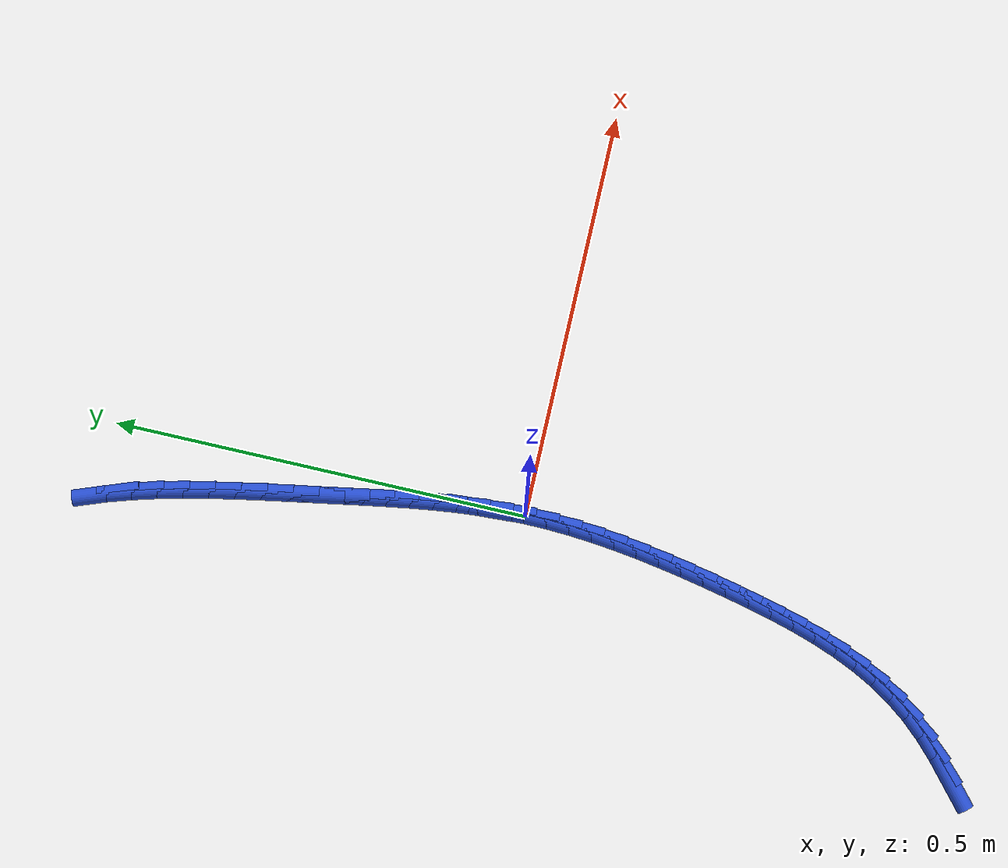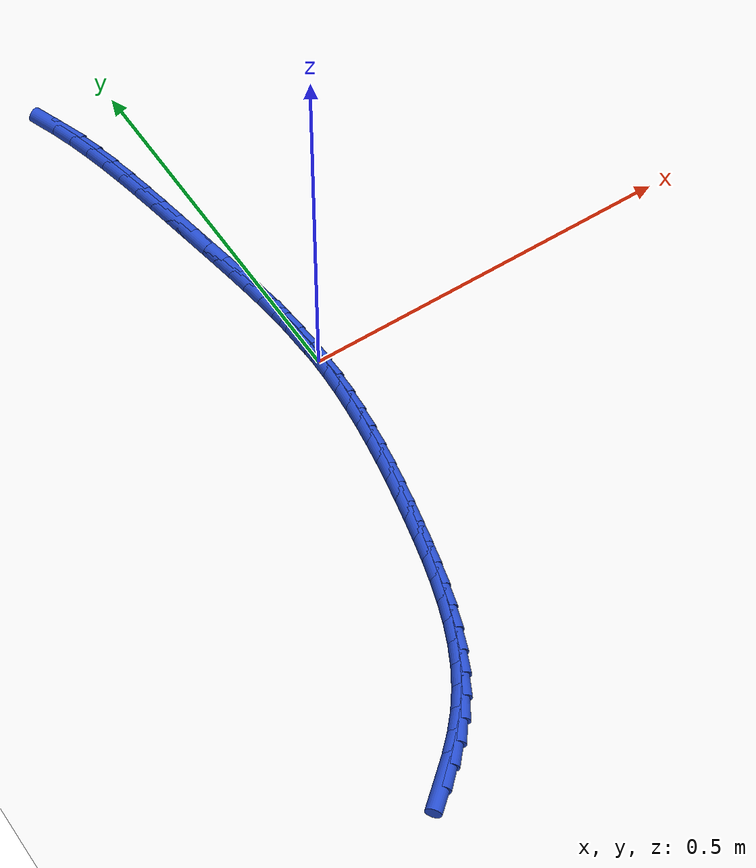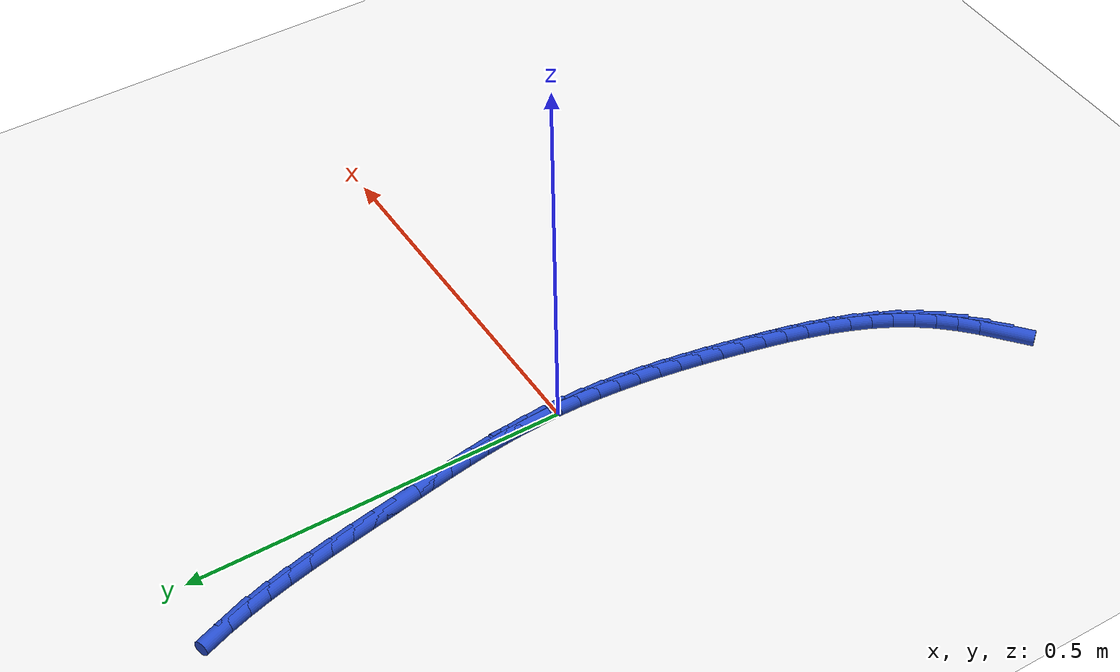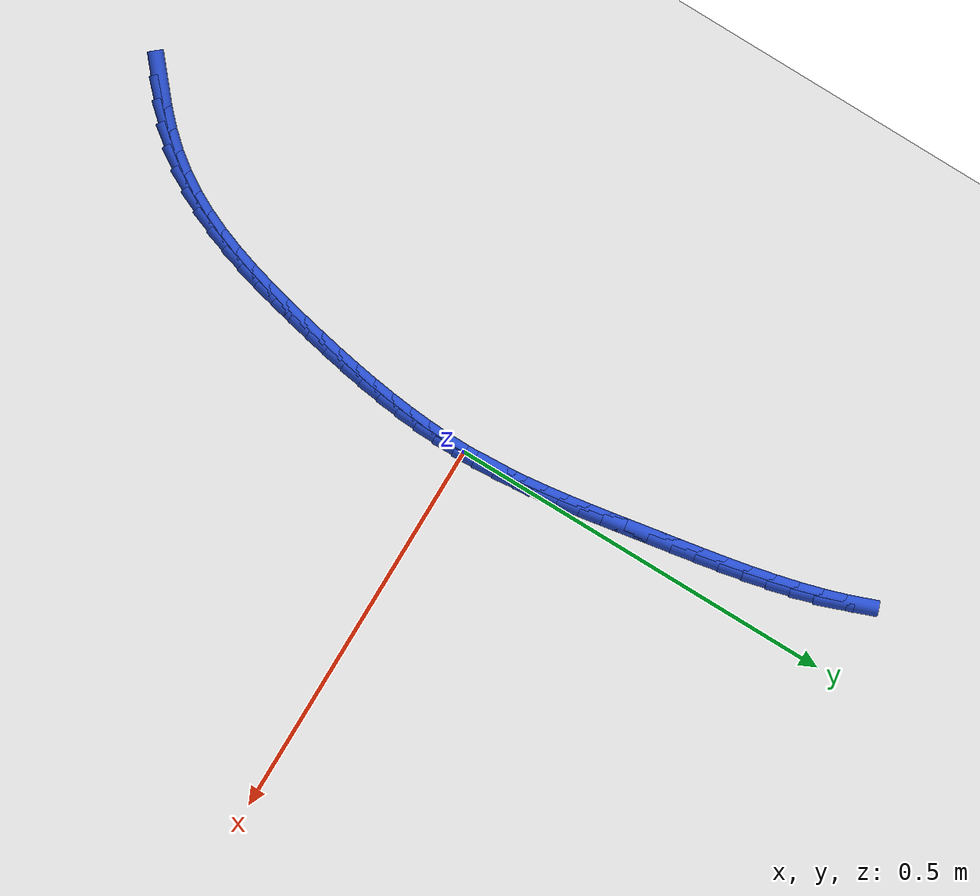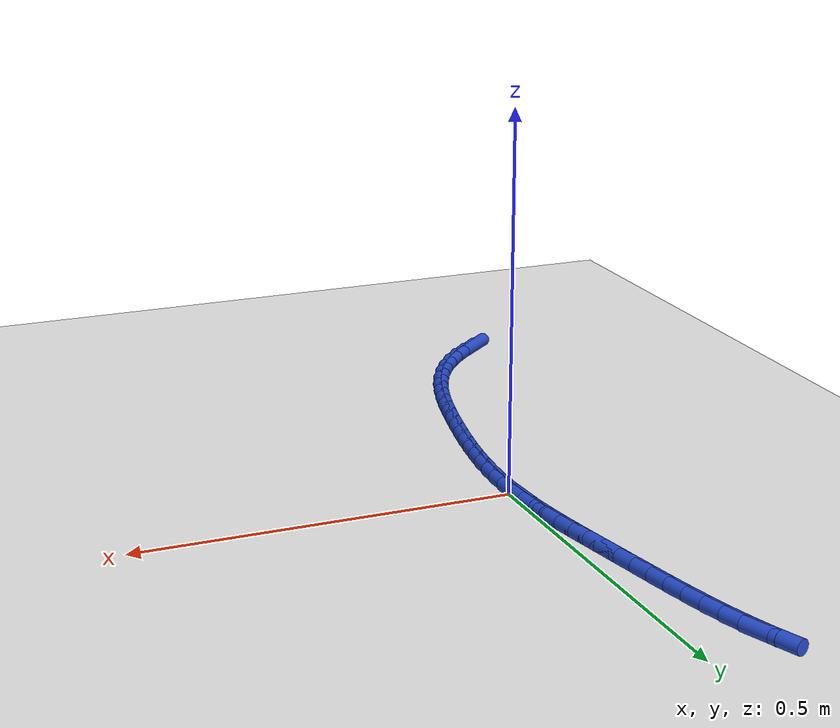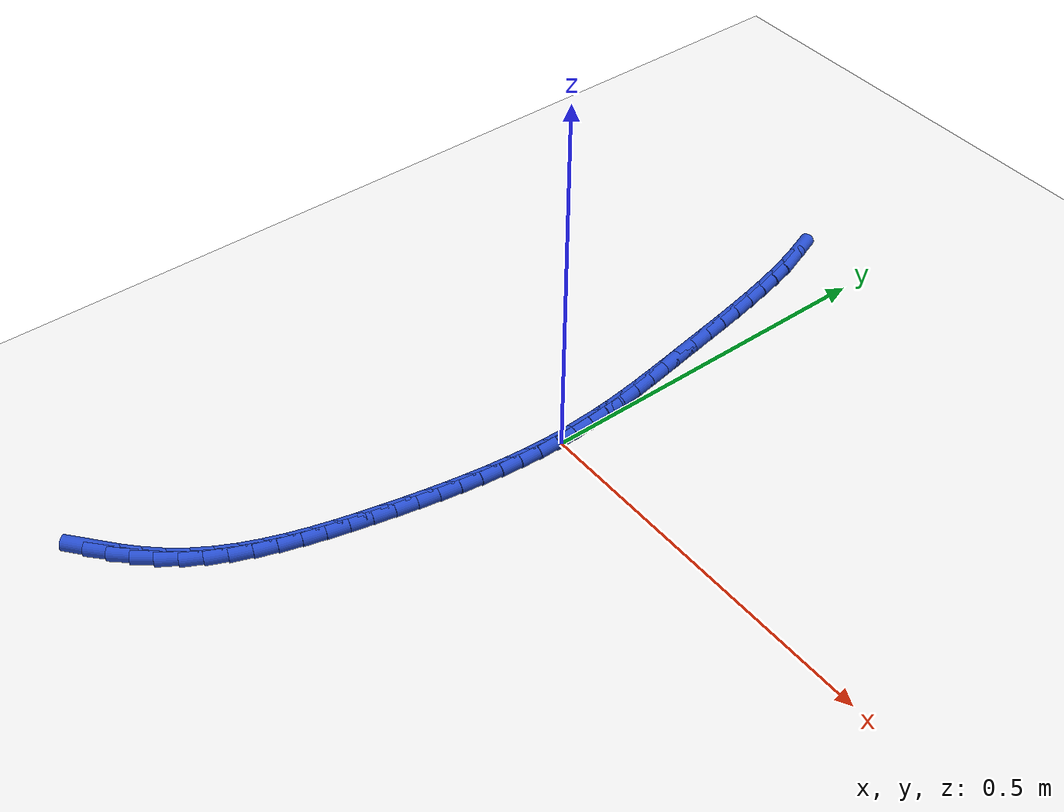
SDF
<sdf version="1.6">
 <world name="default">
  <model name="ground_plane">
   <static>1</static>
   <link name="link">
    <collision name="collision">
     <geometry><plane><normal>0 0 1</normal><size>100 100</size></plane></geometry>
     <surface><friction><ode><mu>100</mu><mu2>50</mu2></ode></friction></surface>
    </collision>
    <visual name="visual">
     <cast_shadows>0</cast_shadows>
     <geometry><plane><normal>0 0 1</normal><size>100 100</size></plane></geometry>
     <material>
      <script><uri>file://media/materials/scripts/gazebo.material</uri><name>Gazebo/WhiteGlow</name></script>
     </material>
    </visual>
   </link>
  </model>
  <model name="line">
   <link name="link_0">
    <pose>0.0 -4.163336342344337e-17 0.01 0 1.57 -1.5425747504506282</pose>
    <collision name="collision">
     <geometry><cylinder><radius>0.01</radius><length>0.08</length></cylinder></geometry>
    </collision>
    <visual name="visual">
     <material>
      <script><name>Gazebo/Blue</name><uri>file://media/materials/scripts/gazebo.material</uri></script>
     </material>
     <geometry><cylinder><radius>0.01</radius><length>0.08</length></cylinder></geometry>
    </visual>
   </link>
   <link name="link_1">
    <pose>-0.0007767634482939448 0.027516436651600525 0.01 0 1.57 -1.5067407634336993</pose>
    <collision name="collision">
     <geometry><cylinder><radius>0.01</radius><length>0.08</length></cylinder></geometry>
    </collision>
    <visual name="visual">
     <material>
      <script><name>Gazebo/Blue</name><uri>file://media/materials/scripts/gazebo.material</uri></script>
     </material>
     <geometry><cylinder><radius>0.01</radius><length>0.08</length></cylinder></geometry>
    </visual>
   </link>
   <link name="link_2">
    <pose>-0.0025387742167545307 0.054986340991013224 0.01 0 1.57 -1.475691516393337</pose>
    <collision name="collision">
     <geometry><cylinder><radius>0.01</radius><length>0.08</length></cylinder></geometry>
    </collision>
    <visual name="visual">
     <material>
      <script><name>Gazebo/Blue</name><uri>file://media/materials/scripts/gazebo.material</uri></script>
     </material>
     <geometry><cylinder><radius>0.01</radius><length>0.08</length></cylinder></geometry>
    </visual>
   </link>
   <link name="link_3">
    <pose>-0.005161695182014652 0.08248240707320804 0.01 0 1.57 -1.4496493044596492</pose>
    <collision name="collision">
     <geometry><cylinder><radius>0.01</radius><length>0.08</length></cylinder></geometry>
    </collision>
    <visual name="visual">
     <material>
      <script><name>Gazebo/Blue</name><uri>file://media/materials/scripts/gazebo.material</uri></script>
     </material>
     <geometry><cylinder><radius>0.01</radius><length>0.08</length></cylinder></geometry>
    </visual>
   </link>
   <link name="link_4">
    <pose>-0.008521189220707201 0.11007732895315499 0.01 0 1.57 -1.428719587197607</pose>
    <collision name="collision">
     <geometry><cylinder><radius>0.01</radius><length>0.08</length></cylinder></geometry>
    </collision>
    <visual name="visual">
     <material>
      <script><name>Gazebo/Blue</name><uri>file://media/materials/scripts/gazebo.material</uri></script>
     </material>
     <geometry><cylinder><radius>0.01</radius><length>0.08</length></cylinder></geometry>
    </visual>
   </link>
   <link name="link_5">
    <pose>-0.012492919209465079 0.13784380068582403 0.01 0 1.57 -1.4129099507532425</pose>
    <collision name="collision">
     <geometry><cylinder><radius>0.01</radius><length>0.08</length></cylinder></geometry>
    </collision>
    <visual name="visual">
     <material>
      <script><name>Gazebo/Blue</name><uri>file://media/materials/scripts/gazebo.material</uri></script>
     </material>
     <geometry><cylinder><radius>0.01</radius><length>0.08</length></cylinder></geometry>
    </visual>
   </link>
   <link name="link_6">
    <pose>-0.016952548024921157 0.16585451632618506 0.01 0 1.57 -1.402149222003702</pose>
    <collision name="collision">
     <geometry><cylinder><radius>0.01</radius><length>0.08</length></cylinder></geometry>
    </collision>
    <visual name="visual">
     <material>
      <script><name>Gazebo/Blue</name><uri>file://media/materials/scripts/gazebo.material</uri></script>
     </material>
     <geometry><cylinder><radius>0.01</radius><length>0.08</length></cylinder></geometry>
    </visual>
   </link>
   <link name="link_7">
    <pose>-0.02177573854370835 0.1941821699292082 0.01 0 1.57 -1.396304508381116</pose>
    <collision name="collision">
     <geometry><cylinder><radius>0.01</radius><length>0.08</length></cylinder></geometry>
    </collision>
    <visual name="visual">
     <material>
      <script><name>Gazebo/Blue</name><uri>file://media/materials/scripts/gazebo.material</uri></script>
     </material>
     <geometry><cylinder><radius>0.01</radius><length>0.08</length></cylinder></geometry>
    </visual>
   </link>
   <link name="link_8">
    <pose>-0.02683815364245954 0.22289945554986332 0.01 0 1.57 -1.3951924830440092</pose>
    <collision name="collision">
     <geometry><cylinder><radius>0.01</radius><length>0.08</length></cylinder></geometry>
    </collision>
    <visual name="visual">
     <material>
      <script><name>Gazebo/Blue</name><uri>file://media/materials/scripts/gazebo.material</uri></script>
     </material>
     <geometry><cylinder><radius>0.01</radius><length>0.08</length></cylinder></geometry>
    </visual>
   </link>
   <link name="link_9">
    <pose>-0.032015521711502445 0.2520790029199649 0.01 0 1.57 -1.3963318114265992</pose>
    <collision name="collision">
     <geometry><cylinder><radius>0.01</radius><length>0.08</length></cylinder></geometry>
    </collision>
    <visual name="visual">
     <material>
      <script><name>Gazebo/Blue</name><uri>file://media/materials/scripts/gazebo.material</uri></script>
     </material>
     <geometry><cylinder><radius>0.01</radius><length>0.08</length></cylinder></geometry>
    </visual>
   </link>
   <link name="link_10">
    <pose>-0.0372426578956453 0.28173542876327295 0.01 0 1.57 -1.3932625582505984</pose>
    <collision name="collision">
     <geometry><cylinder><radius>0.01</radius><length>0.08</length></cylinder></geometry>
    </collision>
    <visual name="visual">
     <material>
      <script><name>Gazebo/Blue</name><uri>file://media/materials/scripts/gazebo.material</uri></script>
     </material>
     <geometry><cylinder><radius>0.01</radius><length>0.08</length></cylinder></geometry>
    </visual>
   </link>
   <link name="link_11">
    <pose>-0.042622299834402605 0.311718478858723 0.01 0 1.57 -1.384964978185609</pose>
    <collision name="collision">
     <geometry><cylinder><radius>0.01</radius><length>0.08</length></cylinder></geometry>
    </collision>
    <visual name="visual">
     <material>
      <script><name>Gazebo/Blue</name><uri>file://media/materials/scripts/gazebo.material</uri></script>
     </material>
     <geometry><cylinder><radius>0.01</radius><length>0.08</length></cylinder></geometry>
    </visual>
   </link>
   <link name="link_12">
    <pose>-0.04828681487263271 0.3418488077219059 0.01 0 1.57 -1.3714175723463924</pose>
    <collision name="collision">
     <geometry><cylinder><radius>0.01</radius><length>0.08</length></cylinder></geometry>
    </collision>
    <visual name="visual">
     <material>
      <script><name>Gazebo/Blue</name><uri>file://media/materials/scripts/gazebo.material</uri></script>
     </material>
     <geometry><cylinder><radius>0.01</radius><length>0.08</length></cylinder></geometry>
    </visual>
   </link>
   <link name="link_13">
    <pose>-0.05436857035519397 0.3719470698684126 0.01 0 1.57 -1.3524513216249885</pose>
    <collision name="collision">
     <geometry><cylinder><radius>0.01</radius><length>0.08</length></cylinder></geometry>
    </collision>
    <visual name="visual">
     <material>
      <script><name>Gazebo/Blue</name><uri>file://media/materials/scripts/gazebo.material</uri></script>
     </material>
     <geometry><cylinder><radius>0.01</radius><length>0.08</length></cylinder></geometry>
    </visual>
   </link>
   <link name="link_14">
    <pose>-0.06099993362694474 0.4018339198138341 0.01 0 1.57 -1.3277549563608269</pose>
    <collision name="collision">
     <geometry><cylinder><radius>0.01</radius><length>0.08</length></cylinder></geometry>
    </collision>
    <visual name="visual">
     <material>
      <script><name>Gazebo/Blue</name><uri>file://media/materials/scripts/gazebo.material</uri></script>
     </material>
     <geometry><cylinder><radius>0.01</radius><length>0.08</length></cylinder></geometry>
    </visual>
   </link>
   <link name="link_15">
    <pose>-0.06831327203274337 0.43133001207376115 0.01 0 1.57 -1.2968772920442861</pose>
    <collision name="collision">
     <geometry><cylinder><radius>0.01</radius><length>0.08</length></cylinder></geometry>
    </collision>
    <visual name="visual">
     <material>
      <script><name>Gazebo/Blue</name><uri>file://media/materials/scripts/gazebo.material</uri></script>
     </material>
     <geometry><cylinder><radius>0.01</radius><length>0.08</length></cylinder></geometry>
    </visual>
   </link>
   <link name="link_16">
    <pose>-0.07644095291744828 0.4602560011637852 0.01 0 1.57 -1.259230542531432</pose>
    <collision name="collision">
     <geometry><cylinder><radius>0.01</radius><length>0.08</length></cylinder></geometry>
    </collision>
    <visual name="visual">
     <material>
      <script><name>Gazebo/Blue</name><uri>file://media/materials/scripts/gazebo.material</uri></script>
     </material>
     <geometry><cylinder><radius>0.01</radius><length>0.08</length></cylinder></geometry>
    </visual>
   </link>
   <link name="link_17">
    <pose>-0.08551534362591773 0.48843254159949656 0.01 0 1.57 -1.2141005647863006</pose>
    <collision name="collision">
     <geometry><cylinder><radius>0.01</radius><length>0.08</length></cylinder></geometry>
    </collision>
    <visual name="visual">
     <material>
      <script><name>Gazebo/Blue</name><uri>file://media/materials/scripts/gazebo.material</uri></script>
     </material>
     <geometry><cylinder><radius>0.01</radius><length>0.08</length></cylinder></geometry>
    </visual>
   </link>
   <link name="link_229">
    <pose>-0.18917706475846277 -0.5457836307527268 0.01 0 1.57 0.7023953089072562</pose>
    <collision name="collision">
     <geometry><cylinder><radius>0.01</radius><length>0.08</length></cylinder></geometry>
    </collision>
    <visual name="visual">
     <material>
      <script><name>Gazebo/Blue</name><uri>file://media/materials/scripts/gazebo.material</uri></script>
     </material>
     <geometry><cylinder><radius>0.01</radius><length>0.08</length></cylinder></geometry>
    </visual>
   </link>
   <link name="link_230">
    <pose>-0.1671827217556011 -0.5271678096073988 0.01 0 1.57 0.7607023930510779</pose>
    <collision name="collision">
     <geometry><cylinder><radius>0.01</radius><length>0.08</length></cylinder></geometry>
    </collision>
    <visual name="visual">
     <material>
      <script><name>Gazebo/Blue</name><uri>file://media/materials/scripts/gazebo.material</uri></script>
     </material>
     <geometry><cylinder><radius>0.01</radius><length>0.08</length></cylinder></geometry>
    </visual>
   </link>
   <link name="link_231">
    <pose>-0.14659007007790514 -0.5075679449190592 0.01 0 1.57 0.8352425964992043</pose>
    <collision name="collision">
     <geometry><cylinder><radius>0.01</radius><length>0.08</length></cylinder></geometry>
    </collision>
    <visual name="visual">
     <material>
      <script><name>Gazebo/Blue</name><uri>file://media/materials/scripts/gazebo.material</uri></script>
     </material>
     <geometry><cylinder><radius>0.01</radius><length>0.08</length></cylinder></geometry>
    </visual>
   </link>
   <link name="link_232">
    <pose>-0.12775054544962508 -0.4867500816274756 0.01 0 1.57 0.9244689457603786</pose>
    <collision name="collision">
     <geometry><cylinder><radius>0.01</radius><length>0.08</length></cylinder></geometry>
    </collision>
    <visual name="visual">
     <material>
      <script><name>Gazebo/Blue</name><uri>file://media/materials/scripts/gazebo.material</uri></script>
     </material>
     <geometry><cylinder><radius>0.01</radius><length>0.08</length></cylinder></geometry>
    </visual>
   </link>
   <link name="link_233">
    <pose>-0.11097306167533716 -0.46451132505499315 0.01 0 1.57 1.012262515980103</pose>
    <collision name="collision">
     <geometry><cylinder><radius>0.01</radius><length>0.08</length></cylinder></geometry>
    </collision>
    <visual name="visual">
     <material>
      <script><name>Gazebo/Blue</name><uri>file://media/materials/scripts/gazebo.material</uri></script>
     </material>
     <geometry><cylinder><radius>0.01</radius><length>0.08</length></cylinder></geometry>
    </visual>
   </link>
   <link name="link_234">
    <pose>-0.09621953729679288 -0.4409022452240169 0.01 0 1.57 1.0900626221624858</pose>
    <collision name="collision">
     <geometry><cylinder><radius>0.01</radius><length>0.08</length></cylinder></geometry>
    </collision>
    <visual name="visual">
     <material>
      <script><name>Gazebo/Blue</name><uri>file://media/materials/scripts/gazebo.material</uri></script>
     </material>
     <geometry><cylinder><radius>0.01</radius><length>0.08</length></cylinder></geometry>
    </visual>
   </link>
   <link name="link_235">
    <pose>-0.08328256644716958 -0.4160970961521818 0.01 0 1.57 1.1574101706144206</pose>
    <collision name="collision">
     <geometry><cylinder><radius>0.01</radius><length>0.08</length></cylinder></geometry>
    </collision>
    <visual name="visual">
     <material>
      <script><name>Gazebo/Blue</name><uri>file://media/materials/scripts/gazebo.material</uri></script>
     </material>
     <geometry><cylinder><radius>0.01</radius><length>0.08</length></cylinder></geometry>
    </visual>
   </link>
   <link name="link_236">
    <pose>-0.07195359994709284 -0.39027096699639946 0.01 0 1.57 1.2144107417041485</pose>
    <collision name="collision">
     <geometry><cylinder><radius>0.01</radius><length>0.08</length></cylinder></geometry>
    </collision>
    <visual name="visual">
     <material>
      <script><name>Gazebo/Blue</name><uri>file://media/materials/scripts/gazebo.material</uri></script>
     </material>
     <geometry><cylinder><radius>0.01</radius><length>0.08</length></cylinder></geometry>
    </visual>
   </link>
   <link name="link_237">
    <pose>-0.062024088617188416 -0.3635989469135822 0.01 0 1.57 1.2614615958192061</pose>
    <collision name="collision">
     <geometry><cylinder><radius>0.01</radius><length>0.08</length></cylinder></geometry>
    </collision>
    <visual name="visual">
     <material>
      <script><name>Gazebo/Blue</name><uri>file://media/materials/scripts/gazebo.material</uri></script>
     </material>
     <geometry><cylinder><radius>0.01</radius><length>0.08</length></cylinder></geometry>
    </visual>
   </link>
   <link name="link_238">
    <pose>-0.05328548327808188 -0.33625612506064173 0.01 0 1.57 1.2990718868488218</pose>
    <collision name="collision">
     <geometry><cylinder><radius>0.01</radius><length>0.08</length></cylinder></geometry>
    </collision>
    <visual name="visual">
     <material>
      <script><name>Gazebo/Blue</name><uri>file://media/materials/scripts/gazebo.material</uri></script>
     </material>
     <geometry><cylinder><radius>0.01</radius><length>0.08</length></cylinder></geometry>
    </visual>
   </link>
   <link name="link_239">
    <pose>-0.04552923475039889 -0.3084175905944901 0.01 0 1.57 1.3277353683764146</pose>
    <collision name="collision">
     <geometry><cylinder><radius>0.01</radius><length>0.08</length></cylinder></geometry>
    </collision>
    <visual name="visual">
     <material>
      <script><name>Gazebo/Blue</name><uri>file://media/materials/scripts/gazebo.material</uri></script>
     </material>
     <geometry><cylinder><radius>0.01</radius><length>0.08</length></cylinder></geometry>
    </visual>
   </link>
   <link name="link_240">
    <pose>-0.038546793854765324 -0.28025843267204015 0.01 0 1.57 1.347847295997698</pose>
    <collision name="collision">
     <geometry><cylinder><radius>0.01</radius><length>0.08</length></cylinder></geometry>
    </collision>
    <visual name="visual">
     <material>
      <script><name>Gazebo/Blue</name><uri>file://media/materials/scripts/gazebo.material</uri></script>
     </material>
     <geometry><cylinder><radius>0.01</radius><length>0.08</length></cylinder></geometry>
    </visual>
   </link>
   <link name="link_241">
    <pose>-0.03212961141180643 -0.2519537404502022 0.01 0 1.57 1.3609463753058828</pose>
    <collision name="collision">
     <geometry><cylinder><radius>0.01</radius><length>0.08</length></cylinder></geometry>
    </collision>
    <visual name="visual">
     <material>
      <script><name>Gazebo/Blue</name><uri>file://media/materials/scripts/gazebo.material</uri></script>
     </material>
     <geometry><cylinder><radius>0.01</radius><length>0.08</length></cylinder></geometry>
    </visual>
   </link>
   <link name="link_242">
    <pose>-0.026103302728847262 -0.22365929646329652 0.01 0 1.57 1.3744691662382025</pose>
    <collision name="collision">
     <geometry><cylinder><radius>0.01</radius><length>0.08</length></cylinder></geometry>
    </collision>
    <visual name="visual">
     <material>
      <script><name>Gazebo/Blue</name><uri>file://media/materials/scripts/gazebo.material</uri></script>
     </material>
     <geometry><cylinder><radius>0.01</radius><length>0.08</length></cylinder></geometry>
    </visual>
   </link>
   <link name="link_243">
    <pose>-0.02048710589043241 -0.19542146547747882 0.01 0 1.57 1.3910703342962947</pose>
    <collision name="collision">
     <geometry><cylinder><radius>0.01</radius><length>0.08</length></cylinder></geometry>
    </collision>
    <visual name="visual">
     <material>
      <script><name>Gazebo/Blue</name><uri>file://media/materials/scripts/gazebo.material</uri></script>
     </material>
     <geometry><cylinder><radius>0.01</radius><length>0.08</length></cylinder></geometry>
    </visual>
   </link>
   <link name="link_244">
    <pose>-0.015368388873527636 -0.16724811151596022 0.01 0 1.57 1.4108358486086412</pose>
    <collision name="collision">
     <geometry><cylinder><radius>0.01</radius><length>0.08</length></cylinder></geometry>
    </collision>
    <visual name="visual">
     <material>
      <script><name>Gazebo/Blue</name><uri>file://media/materials/scripts/gazebo.material</uri></script>
     </material>
     <geometry><cylinder><radius>0.01</radius><length>0.08</length></cylinder></geometry>
    </visual>
   </link>
   <link name="link_245">
    <pose>-0.010834595195564888 -0.13914705591343485 0.01 0 1.57 1.4338537747980968</pose>
    <collision name="collision">
     <geometry><cylinder><radius>0.01</radius><length>0.08</length></cylinder></geometry>
    </collision>
    <visual name="visual">
     <material>
      <script><name>Gazebo/Blue</name><uri>file://media/materials/scripts/gazebo.material</uri></script>
     </material>
     <geometry><cylinder><radius>0.01</radius><length>0.08</length></cylinder></geometry>
    </visual>
   </link>
   <link name="link_246">
    <pose>-0.006973168373976129 -0.11112612000459685 0.01 0 1.57 1.4602115887408549</pose>
    <collision name="collision">
     <geometry><cylinder><radius>0.01</radius><length>0.08</length></cylinder></geometry>
    </collision>
    <visual name="visual">
     <material>
      <script><name>Gazebo/Blue</name><uri>file://media/materials/scripts/gazebo.material</uri></script>
     </material>
     <geometry><cylinder><radius>0.01</radius><length>0.08</length></cylinder></geometry>
    </visual>
   </link>
   <link name="link_247">
    <pose>-0.0038715519261933087 -0.08319312512414022 0.01 0 1.57 1.4899889567065934</pose>
    <collision name="collision">
     <geometry><cylinder><radius>0.01</radius><length>0.08</length></cylinder></geometry>
    </collision>
    <visual name="visual">
     <material>
      <script><name>Gazebo/Blue</name><uri>file://media/materials/scripts/gazebo.material</uri></script>
     </material>
     <geometry><cylinder><radius>0.01</radius><length>0.08</length></cylinder></geometry>
    </visual>
   </link>
   <link name="link_248">
    <pose>-0.0016171893696483755 -0.05535589260675913 0.01 0 1.57 1.5232486523046023</pose>
    <collision name="collision">
     <geometry><cylinder><radius>0.01</radius><length>0.08</length></cylinder></geometry>
    </collision>
    <visual name="visual">
     <material>
      <script><name>Gazebo/Blue</name><uri>file://media/materials/scripts/gazebo.material</uri></script>
     </material>
     <geometry><cylinder><radius>0.01</radius><length>0.08</length></cylinder></geometry>
    </visual>
   </link>
   <link name="link_249">
    <pose>-0.0002975242217732885 -0.027622243787147685 0.01 0 1.57 1.5600255610752354</pose>
    <collision name="collision">
     <geometry><cylinder><radius>0.01</radius><length>0.08</length></cylinder></geometry>
    </collision>
    <visual name="visual">
     <material>
      <script><name>Gazebo/Blue</name><uri>file://media/materials/scripts/gazebo.material</uri></script>
     </material>
     <geometry><cylinder><radius>0.01</radius><length>0.08</length></cylinder></geometry>
    </visual>
   </link>
   <link name="link_250">
    <pose>1.734723475976807e-18 4.85722573273506e-17 0.01 0 1.57 -1.5412786797451217</pose>
    <collision name="collision">
     <geometry><cylinder><radius>0.01</radius><length>0.08</length></cylinder></geometry>
    </collision>
    <visual name="visual">
     <material>
      <script><name>Gazebo/Blue</name><uri>file://media/materials/scripts/gazebo.material</uri></script>
     </material>
     <geometry><cylinder><radius>0.01</radius><length>0.08</length></cylinder></geometry>
    </visual>
   </link>
   <link name="link_251">
    <pose>-0.0008120602217604588 0.02750301741998996 0.01 0 1.57 -1.497538908229902</pose>
    <collision name="collision">
     <geometry><cylinder><radius>0.01</radius><length>0.08</length></cylinder></geometry>
    </collision>
    <visual name="visual">
     <material>
      <script><name>Gazebo/Blue</name><uri>file://media/materials/scripts/gazebo.material</uri></script>
     </material>
     <geometry><cylinder><radius>0.01</radius><length>0.08</length></cylinder></geometry>
    </visual>
   </link>
   <link name="link_252">
    <pose>-0.002821148404486622 0.05487898713812793 0.01 0 1.57 -1.519434824304519</pose>
    <collision name="collision">
     <geometry><cylinder><radius>0.01</radius><length>0.08</length></cylinder></geometry>
    </collision>
    <visual name="visual">
     <material>
      <script><name>Gazebo/Blue</name><uri>file://media/materials/scripts/gazebo.material</uri></script>
     </material>
     <geometry><cylinder><radius>0.01</radius><length>0.08</length></cylinder></geometry>
    </visual>
   </link>
  </model>
 </world>
</sdf>
